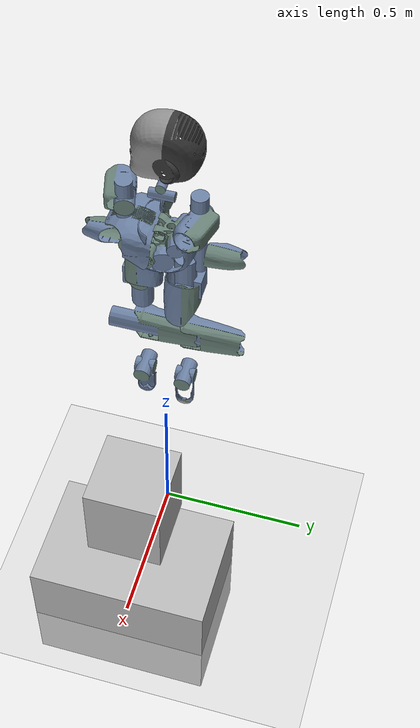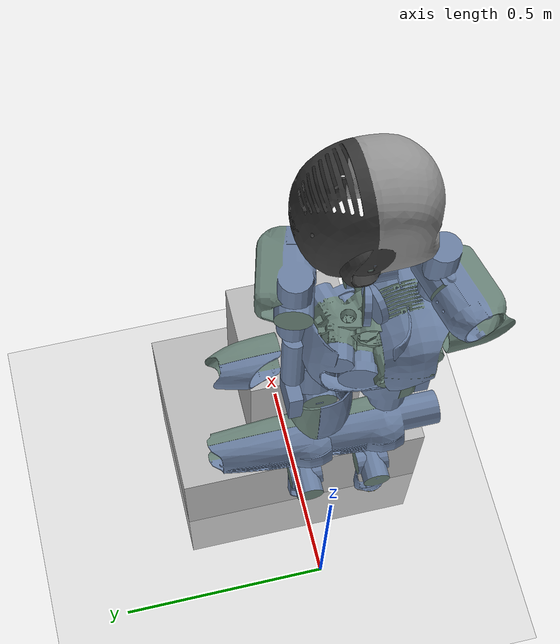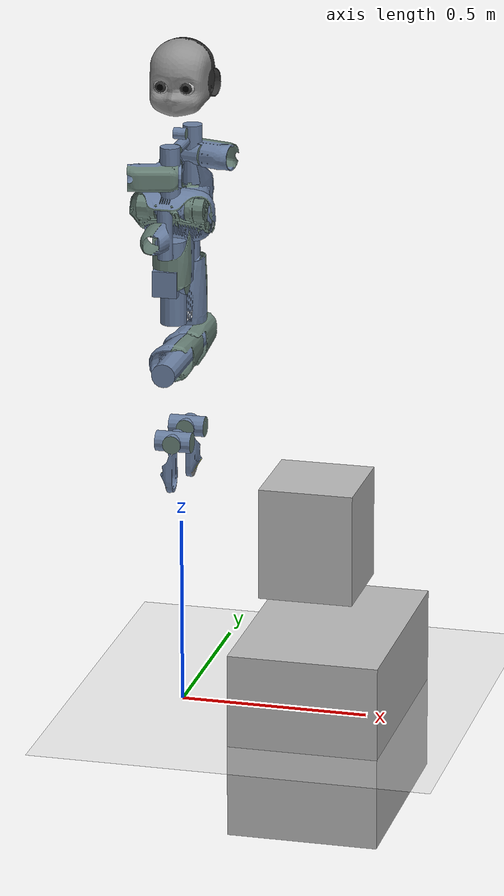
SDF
<?xml version="1.0"?>
<sdf version="1.8">
  <world name="default">
    <physics name="1ms" type="ignored">
      <max_step_size>0.001</max_step_size>
      <real_time_factor>1.0</real_time_factor>
    </physics>

    <plugin filename="gz-sim-physics-system" name="gz::sim::systems::Physics"/>
    <plugin filename="gz-sim-contact-system" name="gz::sim::systems::Contact"/>
    <plugin filename="gz-sim-user-commands-system" name="gz::sim::systems::UserCommands"/>
    <plugin filename="gz-sim-scene-broadcaster-system" name="gz::sim::systems::SceneBroadcaster"/>
    <plugin filename="gz-sim-sensors-system" name="gz::sim::systems::Sensors">
      <render_engine>ogre2</render_engine>
    </plugin>

    <include>
      <uri>model://ground_plane</uri>
    </include>

    <include>
      <uri>model://sun</uri>
    </include>

    <include>
      <uri>model://icub_contact</uri>
      <name>iCub_fixed</name>
      <pose>0 0 -.4 0 0 0</pose>
    </include>

    <model name='box_table'>
      <pose>0.40 0 0 0 0 0</pose>
      <link name='box'>
        <pose>0 0 0 0 0 0</pose>
        <inertial>
          <mass>1000</mass>
        </inertial>
        <collision name ='collision'>
          <geometry>
            <box><size>0.4 0.6 0.5</size></box>
          </geometry>
        </collision>
        <visual name ='visual'>
          <geometry>
            <box><size>0.4 0.6 0.5</size></box>
          </geometry>
        </visual>
      </link>

      <joint name="fixed to ground" type="revolute">
      <parent>box</parent>
      <child>ground_plane::link</child>
       <axis>
        <limit>
          <lower>0.00</lower>
          <upper>0.00</upper>
        </limit>
        <xyz>0 0 1</xyz>
        </axis>
      </joint>
    </model>

    <model name='object'>
      <pose>0.365 0 0.5 0 0 0</pose>
      <link name='main'>
        <pose>0 0 0 0 0 0</pose>
        <inertial>
          <mass>0.5</mass>
        </inertial>
        <collision name ='collision'>
          <geometry>
            <box>
              <size>0.25 0.25 0.3</size>
            </box>
          </geometry>
        </collision>
        <visual name ='visual'>
          <geometry>
            <box>
              <size>0.25 0.25 0.3</size>
            </box>
          </geometry>
        </visual>
      </link>
    </model>

  </world>
</sdf>

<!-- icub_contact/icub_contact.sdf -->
<sdf version='1.4'>
  <model name="iCub_fixed">
    <include>
      <uri>model://icub</uri>
      <pose>0.0 0 1.0 0 0 3.14</pose>
    </include>

    <joint name="fixed to ground" type="fixed">
      <parent>world</parent>
      <child>iCub::root_link</child>
    </joint>

  </model>
</sdf>
